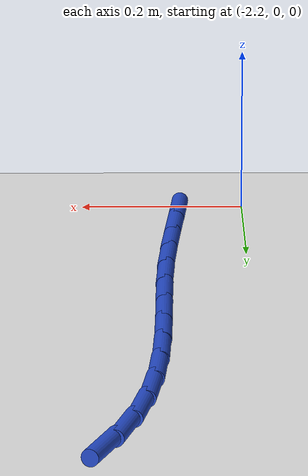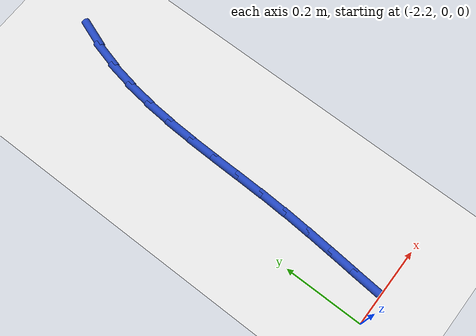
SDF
<sdf version="1.6">
 <world name="default">
  <model name="ground_plane">
   <static>1</static>
   <link name="link">
    <collision name="collision">
     <geometry><plane><normal>0 0 1</normal><size>100 100</size></plane></geometry>
     <surface><friction><ode><mu>100</mu><mu2>50</mu2></ode></friction></surface>
    </collision>
    <visual name="visual">
     <cast_shadows>0</cast_shadows>
     <geometry><plane><normal>0 0 1</normal><size>100 100</size></plane></geometry>
     <material>
      <script><uri>file://media/materials/scripts/gazebo.material</uri><name>Gazebo/WhiteGlow</name></script>
     </material>
    </visual>
   </link>
  </model>
  <model name="line">
   <link name="link_42">
    <pose>-2.0277218178816394 0.9130031750154487 0.01 0 1.57 1.212709412930967</pose>
    <collision name="collision">
     <geometry><cylinder><radius>0.01</radius><length>0.08</length></cylinder></geometry>
    </collision>
    <visual name="visual">
     <material>
      <script><name>Gazebo/Blue</name><uri>file://media/materials/scripts/gazebo.material</uri></script>
     </material>
     <geometry><cylinder><radius>0.01</radius><length>0.08</length></cylinder></geometry>
    </visual>
   </link>
   <link name="link_43">
    <pose>-2.050696382306871 0.8516100196204551 0.01 0 1.57 1.3076065678499533</pose>
    <collision name="collision">
     <geometry><cylinder><radius>0.01</radius><length>0.08</length></cylinder></geometry>
    </collision>
    <visual name="visual">
     <material>
      <script><name>Gazebo/Blue</name><uri>file://media/materials/scripts/gazebo.material</uri></script>
     </material>
     <geometry><cylinder><radius>0.01</radius><length>0.08</length></cylinder></geometry>
    </visual>
   </link>
   <link name="link_44">
    <pose>-2.0677783042041966 0.7882121371864269 0.01 0 1.57 1.3867663720804377</pose>
    <collision name="collision">
     <geometry><cylinder><radius>0.01</radius><length>0.08</length></cylinder></geometry>
    </collision>
    <visual name="visual">
     <material>
      <script><name>Gazebo/Blue</name><uri>file://media/materials/scripts/gazebo.material</uri></script>
     </material>
     <geometry><cylinder><radius>0.01</radius><length>0.08</length></cylinder></geometry>
    </visual>
   </link>
   <link name="link_45">
    <pose>-2.0798947674202317 0.7231174597711414 0.01 0 1.57 1.4498824619078299</pose>
    <collision name="collision">
     <geometry><cylinder><radius>0.01</radius><length>0.08</length></cylinder></geometry>
    </collision>
    <visual name="visual">
     <material>
      <script><name>Gazebo/Blue</name><uri>file://media/materials/scripts/gazebo.material</uri></script>
     </material>
     <geometry><cylinder><radius>0.01</radius><length>0.08</length></cylinder></geometry>
    </visual>
   </link>
   <link name="link_46">
    <pose>-2.087972955801595 0.6566339194323757 0.01 0 1.57 1.497411932358682</pose>
    <collision name="collision">
     <geometry><cylinder><radius>0.01</radius><length>0.08</length></cylinder></geometry>
    </collision>
    <visual name="visual">
     <material>
      <script><name>Gazebo/Blue</name><uri>file://media/materials/scripts/gazebo.material</uri></script>
     </material>
     <geometry><cylinder><radius>0.01</radius><length>0.08</length></cylinder></geometry>
    </visual>
   </link>
   <link name="link_47">
    <pose>-2.0929400531949014 0.5890694482279072 0.01 0 1.57 1.5300916745068471</pose>
    <collision name="collision">
     <geometry><cylinder><radius>0.01</radius><length>0.08</length></cylinder></geometry>
    </collision>
    <visual name="visual">
     <material>
      <script><name>Gazebo/Blue</name><uri>file://media/materials/scripts/gazebo.material</uri></script>
     </material>
     <geometry><cylinder><radius>0.01</radius><length>0.08</length></cylinder></geometry>
    </visual>
   </link>
   <link name="link_48">
    <pose>-2.0957232434467703 0.5207319782155129 0.01 0 1.57 1.548613764255162</pose>
    <collision name="collision">
     <geometry><cylinder><radius>0.01</radius><length>0.08</length></cylinder></geometry>
    </collision>
    <visual name="visual">
     <material>
      <script><name>Gazebo/Blue</name><uri>file://media/materials/scripts/gazebo.material</uri></script>
     </material>
     <geometry><cylinder><radius>0.01</radius><length>0.08</length></cylinder></geometry>
    </visual>
   </link>
   <link name="link_49">
    <pose>-2.097249710403816 0.45192944145297004 0.01 0 1.57 1.5534411493588103</pose>
    <collision name="collision">
     <geometry><cylinder><radius>0.01</radius><length>0.08</length></cylinder></geometry>
    </collision>
    <visual name="visual">
     <material>
      <script><name>Gazebo/Blue</name><uri>file://media/materials/scripts/gazebo.material</uri></script>
     </material>
     <geometry><cylinder><radius>0.01</radius><length>0.08</length></cylinder></geometry>
    </visual>
   </link>
   <link name="link_50">
    <pose>-2.0984466379126565 0.38296976999805576 0.01 0 1.57 1.5447217076231685</pose>
    <collision name="collision">
     <geometry><cylinder><radius>0.01</radius><length>0.08</length></cylinder></geometry>
    </collision>
    <visual name="visual">
     <material>
      <script><name>Gazebo/Blue</name><uri>file://media/materials/scripts/gazebo.material</uri></script>
     </material>
     <geometry><cylinder><radius>0.01</radius><length>0.08</length></cylinder></geometry>
    </visual>
   </link>
   <link name="link_51">
    <pose>-2.100241209819909 0.3141608959085474 0.01 0 1.57 1.5232978280837624</pose>
    <collision name="collision">
     <geometry><cylinder><radius>0.01</radius><length>0.08</length></cylinder></geometry>
    </collision>
    <visual name="visual">
     <material>
      <script><name>Gazebo/Blue</name><uri>file://media/materials/scripts/gazebo.material</uri></script>
     </material>
     <geometry><cylinder><radius>0.01</radius><length>0.08</length></cylinder></geometry>
    </visual>
   </link>
   <link name="link_52">
    <pose>-2.103490915712588 0.24579533240684487 0.01 0 1.57 1.5018735403472083</pose>
    <collision name="collision">
     <geometry><cylinder><radius>0.01</radius><length>0.08</length></cylinder></geometry>
    </collision>
    <visual name="visual">
     <material>
      <script><name>Gazebo/Blue</name><uri>file://media/materials/scripts/gazebo.material</uri></script>
     </material>
     <geometry><cylinder><radius>0.01</radius><length>0.08</length></cylinder></geometry>
    </visual>
   </link>
   <link name="link_53">
    <pose>-2.1081729843465844 0.17797084788383022 0.01 0 1.57 1.489445014070938</pose>
    <collision name="collision">
     <geometry><cylinder><radius>0.01</radius><length>0.08</length></cylinder></geometry>
    </collision>
    <visual name="visual">
     <material>
      <script><name>Gazebo/Blue</name><uri>file://media/materials/scripts/gazebo.material</uri></script>
     </material>
     <geometry><cylinder><radius>0.01</radius><length>0.08</length></cylinder></geometry>
    </visual>
   </link>
   <link name="link_54">
    <pose>-2.113661591030987 0.11065179397737139 0.01 0 1.57 1.4863691217219321</pose>
    <collision name="collision">
     <geometry><cylinder><radius>0.01</radius><length>0.08</length></cylinder></geometry>
    </collision>
    <visual name="visual">
     <material>
      <script><name>Gazebo/Blue</name><uri>file://media/materials/scripts/gazebo.material</uri></script>
     </material>
     <geometry><cylinder><radius>0.01</radius><length>0.08</length></cylinder></geometry>
    </visual>
   </link>
   <link name="link_55">
    <pose>-2.1193191564330207 0.043799921782783136 0.01 0 1.57 1.4928348906508195</pose>
    <collision name="collision">
     <geometry><cylinder><radius>0.01</radius><length>0.08</length></cylinder></geometry>
    </collision>
    <visual name="visual">
     <material>
      <script><name>Gazebo/Blue</name><uri>file://media/materials/scripts/gazebo.material</uri></script>
     </material>
     <geometry><cylinder><radius>0.01</radius><length>0.08</length></cylinder></geometry>
    </visual>
   </link>
  </model>
 </world>
</sdf>
